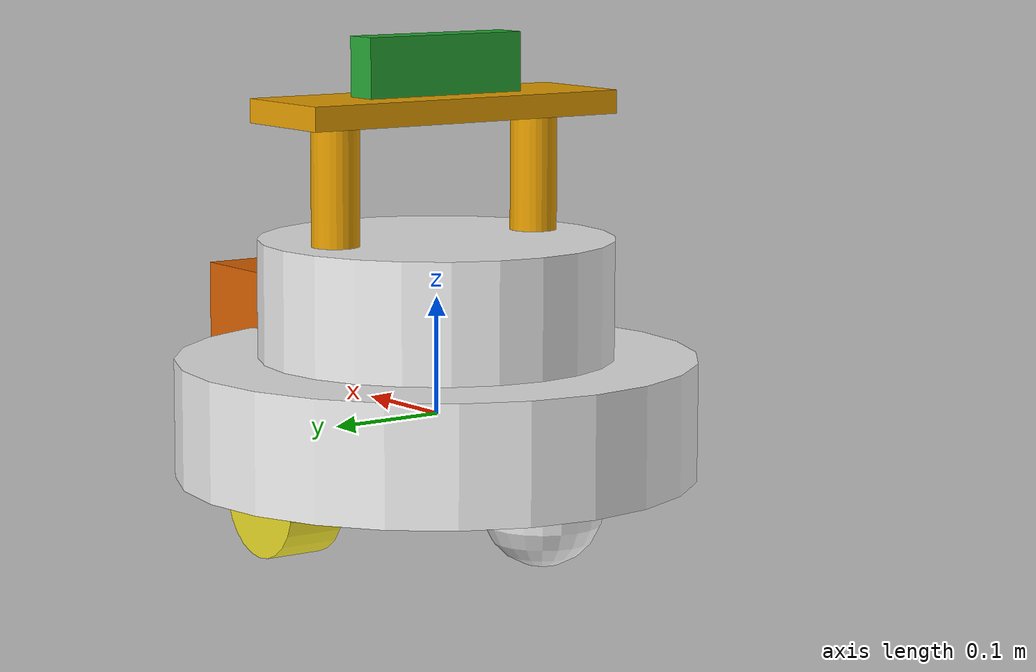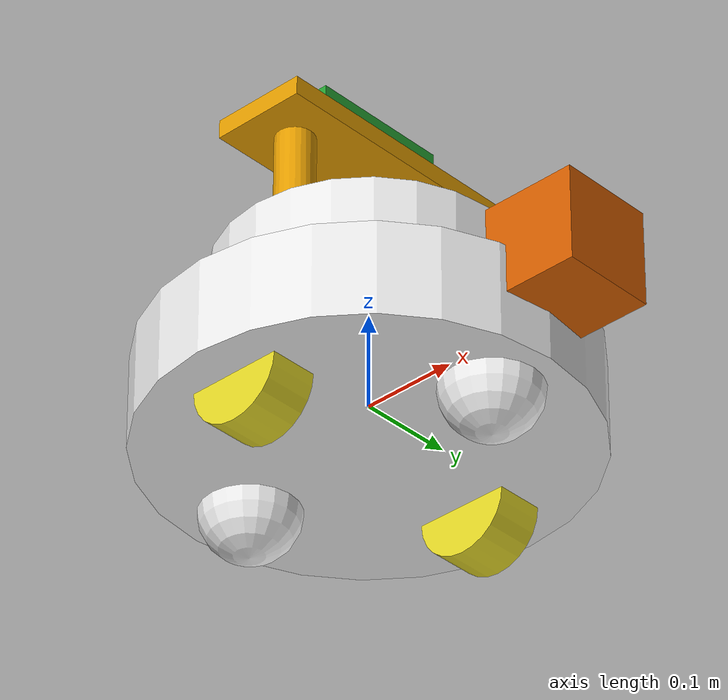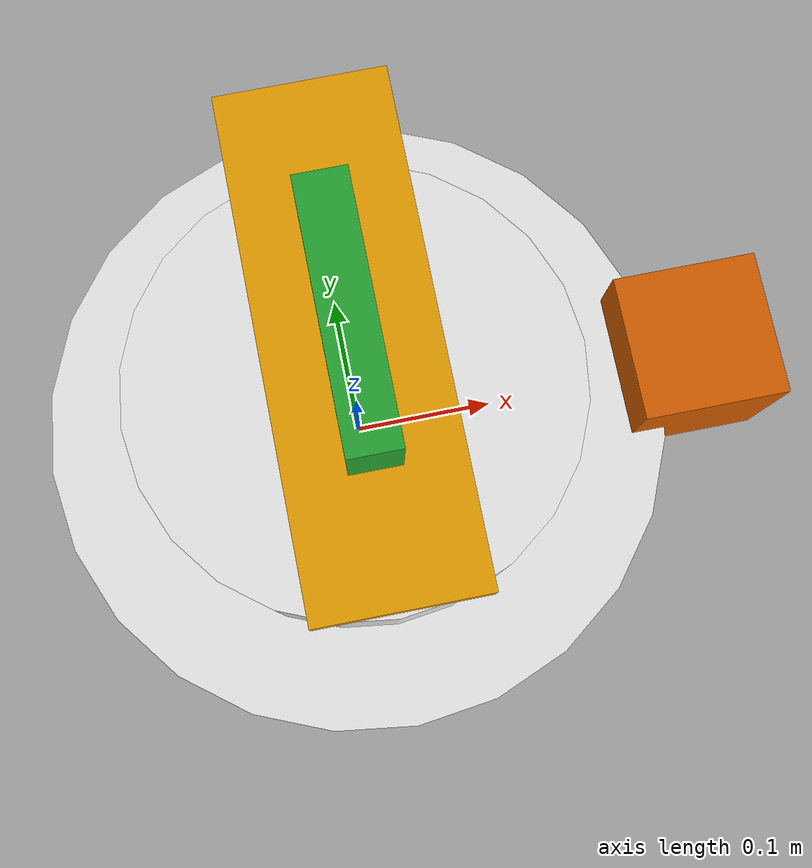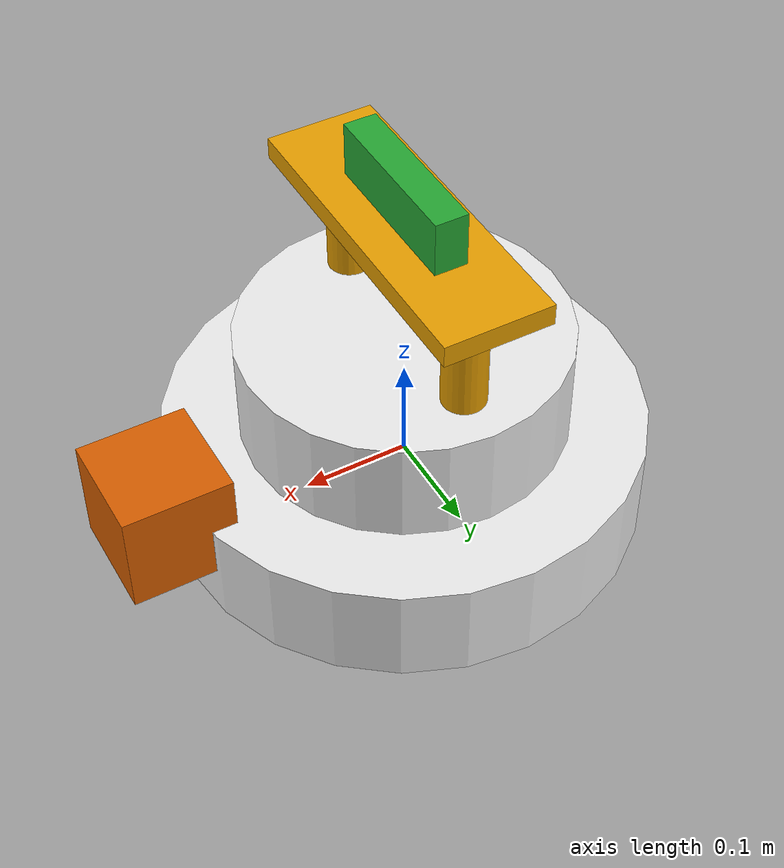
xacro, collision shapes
<?xml version='1.0'?>

<robot name="my_robot" xmlns:xacro="http://www.ros.org/wiki/xacro">

  <xacro:include filename="$(find my_robot)/urdf/extra/materials.xacro" />
  <xacro:include filename="$(find my_robot)/urdf/my_robot.gazebo" />
  <xacro:include filename="$(find my_robot)/urdf/extra/camera_holder.urdf.xacro" />

  <!--
  #################################################
        Global Properties
  #################################################
  -->

  <xacro:property name="holder_rod_r"   value="0.02" />
  <xacro:property name="holder_rod_l"   value="0.1" />
  <xacro:property name="holder_plate_w" value="0.1" />
  <xacro:property name="holder_plate_l" value="0.3" />
  <xacro:property name="holder_plate_h" value="0.02" />

  <xacro:property name="chassis_h" value="0.1" />
  <xacro:property name="chassis_r" value="0.22" />
  <xacro:property name="top_module_r" value="0.15" />
  <xacro:property name="top_module_h" value="0.1" />

  <xacro:property name="camera_w" value="0.03" />
  <xacro:property name="camera_l" value="0.15" />
  <xacro:property name="camera_h" value="0.05" />

  <xacro:property name="hokuyo_pos_xyz" value="0.24 0.0 0.05" />
  <xacro:property name="hokuyo_pos_rpy" value="0.0 0.0 0.0" />

  <xacro:property name="camera_pos_xyz" value="0.0 0.0 ${camera_h/2 + holder_rod_l/2 + holder_plate_h}" />
  <xacro:property name="camera_pos_rpy" value="0.0 0.0 0.0" />

  <!--
  #################################################
        Joint Declaration
  #################################################
  -->

  <joint name="robot_footprint_joint" type="fixed">
    <origin xyz="0 0 0" rpy="0 0 0" />
    <parent link="robot_footprint"/>
    <child link="chassis" />
  </joint>

  <joint type="continuous" name="left_wheel_hinge">
    <origin xyz="0 0.15 -0.05" rpy="0 1.5707 1.5707"/>
    <child link="left_wheel"/>
    <parent link="chassis"/>
    <axis xyz="0 0 1" rpy="0 0 0"/>
    <limit effort="10000" velocity="1000"/>
    <dynamics damping="1.0" friction="1.0"/>
  </joint>

  <joint type="continuous" name="right_wheel_hinge">
    <origin xyz="0 -0.15 -0.05" rpy="0 1.5707 1.5707"/>
    <child link="right_wheel"/>
    <parent link="chassis"/>
    <axis xyz="0 0 1" rpy="0 0 0"/>
    <limit effort="10000" velocity="1000"/>
    <dynamics damping="1.0" friction="1.0"/>
  </joint>

  <joint type="fixed" name="hokuyo_joint">
    <origin xyz="${hokuyo_pos_xyz}" rpy="${hokuyo_pos_rpy}"/>
    <child link="hokuyo"/>
    <parent link="chassis"/>
    <axis xyz="0 1 0" rpy="0 0 0"/>
  </joint>

  <!--
  #################################################
        Joints = camera_holder & camera
  #################################################
  -->

  <xacro:property name="holder_rod_1_xyz"   value="0.0 0.1 0.0" />
  <xacro:property name="holder_rod_2_xyz"   value="0.0 -0.1 0.0" />
  <xacro:property name="holder_plate_xyz"   value="0.0 0.0 ${holder_rod_l/2 + holder_plate_h/2}" />

  <xacro:camera_holder
      name="camera_holder"
      parent="chassis"
      origin_xyz="0 0 ${chassis_h + 0.1}"
      origin_rpy="0 0 0"
      />

  <joint type="fixed" name="camera_joint">
    <origin xyz="${camera_pos_xyz}" rpy="${camera_pos_rpy}"/>
    <child link="rgbd_camera_link"/>
    <parent link="camera_holder_link"/>
    <axis xyz="0 1 0" rpy="0 0 0"/>
  </joint>

  <joint type="fixed" name="camera_optical_joint">
      <origin xyz="0 0 0" rpy="-1.5707 0 -1.5707" />
      <parent link="rgbd_camera_link" />
      <child link="camera_link_optical" />
  </joint>

  <!--
  #################################################
        link = robot_footprint
  #################################################
  -->

  <link name="robot_footprint"></link>

  <!--
  #################################################
        link = chassis
  #################################################
  -->

  <link name='chassis'>
    <pose>0 0 0.1 0 0 0</pose>

    <inertial>
      <mass value="15.0"/>
      <origin xyz="0.0 0 0" rpy=" 0 0 0"/>
      <inertia
          ixx="0.1" ixy="0" ixz="0"
          iyy="0.1" iyz="0"
          izz="0.1"
      />
    </inertial>

    <!-- Part 1 -->

    <collision name='chassis_collision'>
      <origin xyz="0 0 0" rpy=" 0 0 0"/>
      <geometry>
        <cylinder radius="${chassis_r}" length="${chassis_h}" />
      </geometry>
    </collision>

    <visual name='chassis_visual'>
      <origin xyz="0 0 0" rpy=" 0 0 0"/>
      <geometry>
        <cylinder radius="${chassis_r}" length="${chassis_h}" />
      </geometry>
    </visual>

    <!-- Part 2
         For this base, the casters are included as part of the link for stability.
    -->

    <collision name='back_caster_collision'>
      <origin xyz="-0.15 0 -0.05" rpy=" 0 0 0"/>
      <geometry>
        <sphere radius="0.0499"/>
      </geometry>
    </collision>

    <visual name='back_caster_visual'>
      <origin xyz="-0.15 0 -0.05" rpy=" 0 0 0"/>
      <geometry>
        <sphere radius="0.05"/>
      </geometry>
    </visual>

    <!-- Part 3
         For this base, the casters are included as part of the link for stability.
    -->

    <collision name='front_caster_collision'>
      <origin xyz="0.15 0 -0.05" rpy=" 0 0 0"/>
      <geometry>
        <sphere radius="0.0499"/>
      </geometry>
    </collision>

    <visual name='front_caster_visual'>
      <origin xyz="0.15 0 -0.05" rpy=" 0 0 0"/>
      <geometry>
        <sphere radius="0.05"/>
      </geometry>
    </visual>

    <collision name='top_plate_collision'>
      <origin xyz="0.0 0 0.1" rpy=" 0 0 0"/>
      <geometry>
        <cylinder radius="${top_module_r}" length="${top_module_h}" />
      </geometry>
    </collision>

    <visual name='top_plate_visual'>
      <origin xyz="0.0 0 0.1" rpy=" 0 0 0"/>
      <geometry>
        <cylinder radius="${top_module_r}" length="${top_module_h}" />
      </geometry>
    </visual>

  </link>

  <!--
  #################################################
        link = left_wheel
  #################################################
  -->

  <link name='left_wheel'>
    <pose>0 0 0 0 0 0</pose>

    <inertial>
      <mass value="5.0"/>
      <origin xyz="0.0 0 0" rpy=" 0 0 0"/>
      <inertia
          ixx="0.1" ixy="0" ixz="0"
          iyy="0.1" iyz="0"
          izz="0.1"
      />
    </inertial>

    <collision name='left_wheel_collision'>
      <origin xyz="0 0 0" rpy=" 0 0 0"/>
      <geometry>
        <cylinder radius="0.05" length="0.05" />
      </geometry>
    </collision>

    <visual name='left_wheel_visual'>
      <origin xyz="0 0 0" rpy="-1.57 0 0"/>
      <geometry>
        <mesh filename="package://my_robot/meshes/wheel.stl" scale="0.0015 0.0015 0.0015" />
      </geometry>
    </visual>
  </link>

  <!--
  #################################################
        link = right_wheel
  #################################################
  -->

  <link name='right_wheel'>
    <pose>0 0 0 0 0 0</pose>

    <inertial>
      <mass value="5.0"/>
      <origin xyz="0.0 0 0" rpy=" 0 0 0"/>
      <inertia
          ixx="0.1" ixy="0" ixz="0"
          iyy="0.1" iyz="0"
          izz="0.1"
      />
    </inertial>

    <collision name='right_wheel_collision'>
      <origin xyz="0 0 0" rpy=" 0 0 0"/>
      <geometry>
        <cylinder radius="0.05" length="0.05" />
      </geometry>
    </collision>

    <visual name='right_wheel_visual'>
      <origin xyz="0 0 0" rpy="1.57 0 0"/>
      <geometry>
        <mesh filename="package://my_robot/meshes/wheel.stl" scale="0.0015 0.0015 0.0015" />
      </geometry>
    </visual>
  </link>

  <!--
  #################################################
        link = hokuyo
  #################################################
  -->

  <link name='hokuyo'>
    <pose>0 0 0 0 0 0</pose>

    <inertial>
      <mass value="1e-5"/>
      <origin xyz="0.0 0 0" rpy=" 0 0 0"/>
      <inertia
          ixx="0.1" ixy="0" ixz="0"
          iyy="0.1" iyz="0"
          izz="0.1"
      />
    </inertial>

    <collision>
      <origin xyz="0 0 0" rpy=" 0 0 0"/>
      <geometry>
        <box size="0.1 0.1 0.1" />
      </geometry>
    </collision>

    <visual>
      <origin xyz="0 0 0" rpy=" 0 0 0"/>
      <geometry>
        <mesh filename="package://my_robot/meshes/hokuyo.dae" />
      </geometry>
    </visual>
  </link>

  <!--
  #################################################
        link = rgbd_camera_link
  #################################################
  -->

  <link name="camera_link_optical">
  </link>

  <link name='rgbd_camera_link'>
    <pose>0 0 0 0 0 0</pose>

    <inertial>
      <mass value="0.2"/>
      <origin xyz="0.0 0 0" rpy=" 0 0 0"/>
      <inertia
          ixx="0.1" ixy="0" ixz="0"
          iyy="0.1" iyz="0"
          izz="0.1"
      />
    </inertial>

    <collision>
      <origin xyz="0 0 0" rpy=" 0 0 0"/>
      <geometry>
        <box size="${camera_w} ${camera_l} ${camera_h}" />
      </geometry>
    </collision>

    <visual>
      <origin xyz="0 0 0" rpy=" 0 0 0"/>
      <geometry>
        <box size="${camera_w} ${camera_l} ${camera_h}" />
      </geometry>
    </visual>
  </link>

</robot>

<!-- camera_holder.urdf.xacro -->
<robot name="my_robot" xmlns:xacro="http://www.ros.org/wiki/xacro">

  <xacro:macro name="camera_holder" params="name parent origin_xyz origin_rpy">

  <joint type="fixed" name="${name}_joint">
    <origin xyz="${origin_xyz}" rpy="${origin_rpy}"/>
    <child link="${name}_link"/>
    <parent link="${parent}"/>
    <axis xyz="0 1 0" rpy="0 0 0"/>
  </joint>

  <link name="${name}_link">
    <pose>0 0 0 0 0 0</pose>

    <inertial>
      <mass value="0.5"/>
      <origin xyz="0.0 0 0" rpy=" 0 0 0"/>
      <inertia
          ixx="0.1" ixy="0" ixz="0"
          iyy="0.1" iyz="0"
          izz="0.1"
      />
    </inertial>

    <collision name="holder_plate_collision">
      <origin xyz="${holder_plate_xyz}" rpy=" 0 0 0"/>
      <geometry>
        <box size="${holder_plate_w} ${holder_plate_l} ${holder_plate_h}" />
      </geometry>
    </collision>

    <collision name="holder_rod_1_collision">
      <origin xyz="${holder_rod_1_xyz}" rpy=" 0 0 0"/>
      <geometry>
        <cylinder radius="${holder_rod_r}" length="${holder_rod_l}" />
      </geometry>
    </collision>

    <collision name="holder_rod_2_collision">
      <origin xyz="${holder_rod_2_xyz}" rpy=" 0 0 0"/>
      <geometry>
        <cylinder radius="${holder_rod_r}" length="${holder_rod_l}" />
      </geometry>
    </collision>

    <visual name="holder_plate_visual">
      <origin xyz="${holder_plate_xyz}" rpy=" 0 0 0"/>
      <geometry>
        <box size="${holder_plate_w} ${holder_plate_l} ${holder_plate_h}" />
      </geometry>
    </visual>

    <visual name="holder_rod_1_visual">
      <origin xyz="${holder_rod_1_xyz}" rpy=" 0 0 0"/>
      <geometry>
        <cylinder radius="${holder_rod_r}" length="${holder_rod_l}" />
      </geometry>
    </visual>

    <visual name="holder_rod_2_visual">
      <origin xyz="${holder_rod_2_xyz}" rpy=" 0 0 0"/>
      <geometry>
        <cylinder radius="${holder_rod_r}" length="${holder_rod_l}" />
      </geometry>
    </visual>

  </link>

  </xacro:macro>
</robot>
